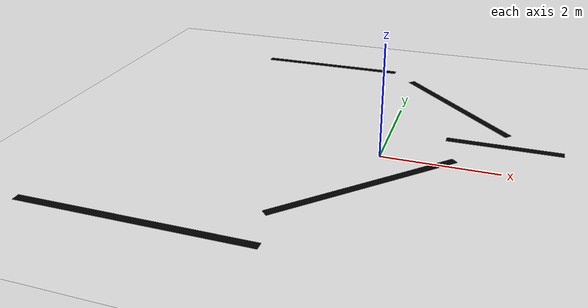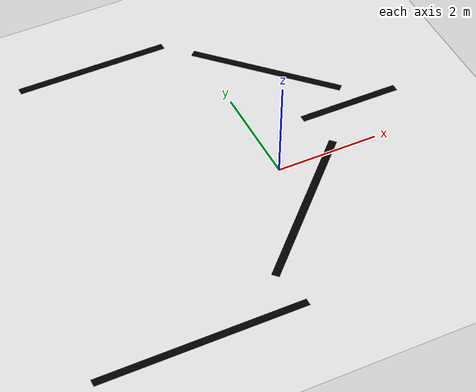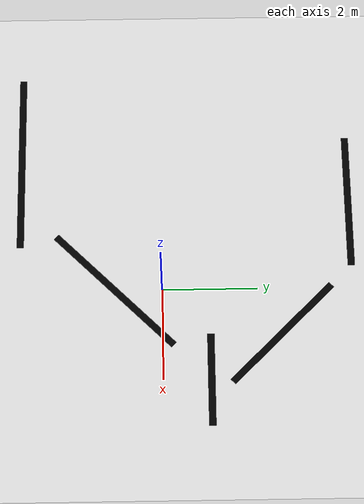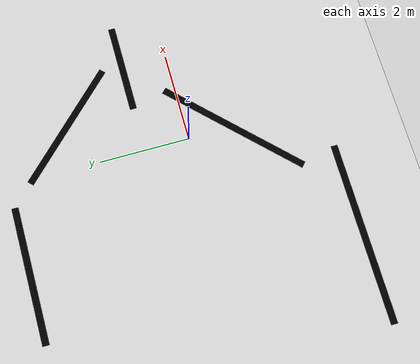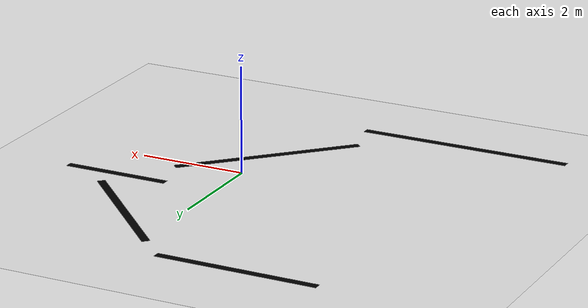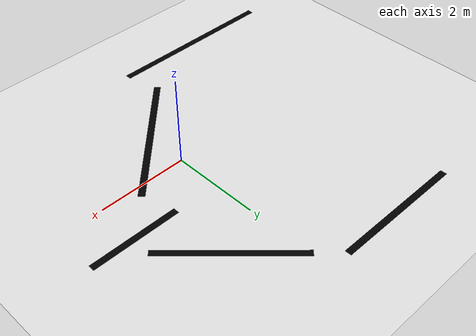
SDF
<?xml version="1.0"?>
<sdf version="1.6">
  <world name="zigzag_world">

    <!-- Lumière du soleil -->
    <include>
      <uri>model://sun</uri>
    </include>

    <!-- Sol blanc -->
    <model name="ground_plane">
      <static>true</static>
      <link name="link">
        <collision name="collision">
          <geometry>
            <plane>
              <normal>0 0 1</normal>
              <size>30 30</size>
            </plane>
          </geometry>
        </collision>
        <visual name="visual">
          <geometry>
            <plane>
              <normal>0 0 1</normal>
              <size>30 30</size>
            </plane>
          </geometry>
          <material>
            <script>
              <uri>file://media/materials/scripts/gazebo.material</uri>
              <name>Gazebo/White</name>
            </script>
          </material>
        </visual>
      </link>
    </model>

    <!-- Ligne 1 : Départ (bas, horizontal) -->
    <model name="line_1">
      <static>true</static>
      <pose>-3 -3 0.001 0 0 0</pose>
      <link name="link">
        <visual name="visual">
          <geometry>
            <box>
              <size>4 0.15 0.001</size>
            </box>
          </geometry>
          <material>
            <ambient>0 0 0 1</ambient>
            <diffuse>0 0 0 1</diffuse>
          </material>
        </visual>
      </link>
    </model>

    <!-- Ligne 2 : Diagonale montante droite -->
    <model name="line_2">
      <static>true</static>
      <pose>0 -1 0.001 0 0 0.785</pose>
      <link name="link">
        <visual name="visual">
          <geometry>
            <box>
              <size>3.5 0.15 0.001</size>
            </box>
          </geometry>
          <material>
            <ambient>0 0 0 1</ambient>
            <diffuse>0 0 0 1</diffuse>
          </material>
        </visual>
      </link>
    </model>

    <!-- Ligne 3 : Horizontal milieu -->
    <model name="line_3">
      <static>true</static>
      <pose>2 1 0.001 0 0 0</pose>
      <link name="link">
        <visual name="visual">
          <geometry>
            <box>
              <size>2 0.15 0.001</size>
            </box>
          </geometry>
          <material>
            <ambient>0 0 0 1</ambient>
            <diffuse>0 0 0 1</diffuse>
          </material>
        </visual>
      </link>
    </model>

    <!-- Ligne 4 : Diagonale descendante gauche -->
    <model name="line_4">
      <static>true</static>
      <pose>1 2.5 0.001 0 0 -0.785</pose>
      <link name="link">
        <visual name="visual">
          <geometry>
            <box>
              <size>3 0.15 0.001</size>
            </box>
          </geometry>
          <material>
            <ambient>0 0 0 1</ambient>
            <diffuse>0 0 0 1</diffuse>
          </material>
        </visual>
      </link>
    </model>

    <!-- Ligne 5 : Arrivée (haut, horizontal) -->
    <model name="line_5">
      <static>true</static>
      <pose>-2 4 0.001 0 0 0</pose>
      <link name="link">
        <visual name="visual">
          <geometry>
            <box>
              <size>3 0.15 0.001</size>
            </box>
          </geometry>
          <material>
            <ambient>0 0 0 1</ambient>
            <diffuse>0 0 0 1</diffuse>
          </material>
        </visual>
      </link>
    </model>

  </world>
</sdf>
